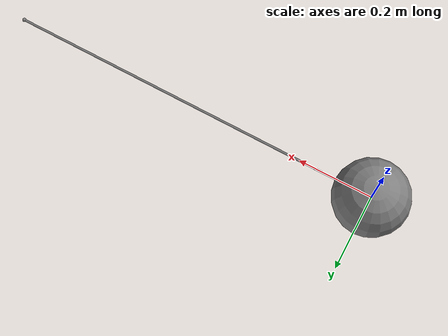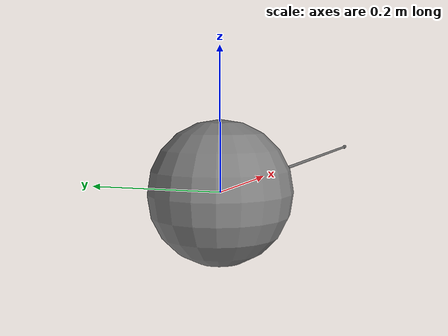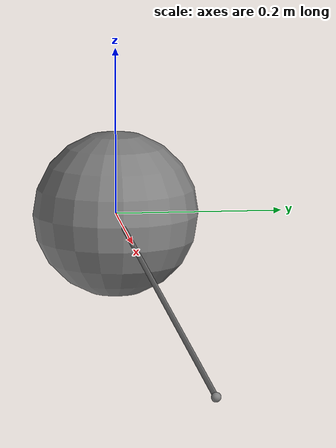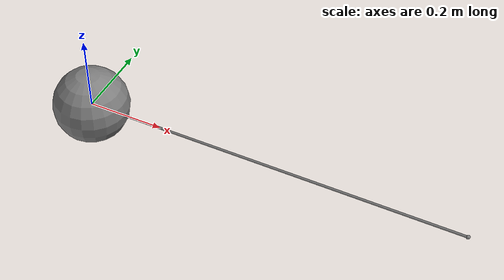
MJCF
<mujoco>
  <worldbody>
    <body>
      <joint type="slide" axis="1 0 0"/>
      <geom type="sphere" size=".1"/>
      <site name="site"/>
    </body>
    <site name="siteworld" pos="1 0 0"/>
  </worldbody>
  <tendon>
    <spatial name="spatial">
      <site site="site"/>
      <site site="siteworld"/>
    </spatial>
  </tendon>
  <actuator>
    <muscle tendon="spatial" lengthrange="0 1"/>
  </actuator>
  <keyframe>
    <key ctrl=".123" act=".456" qpos=".1" qvel=".01"/>
  </keyframe>
</mujoco>
